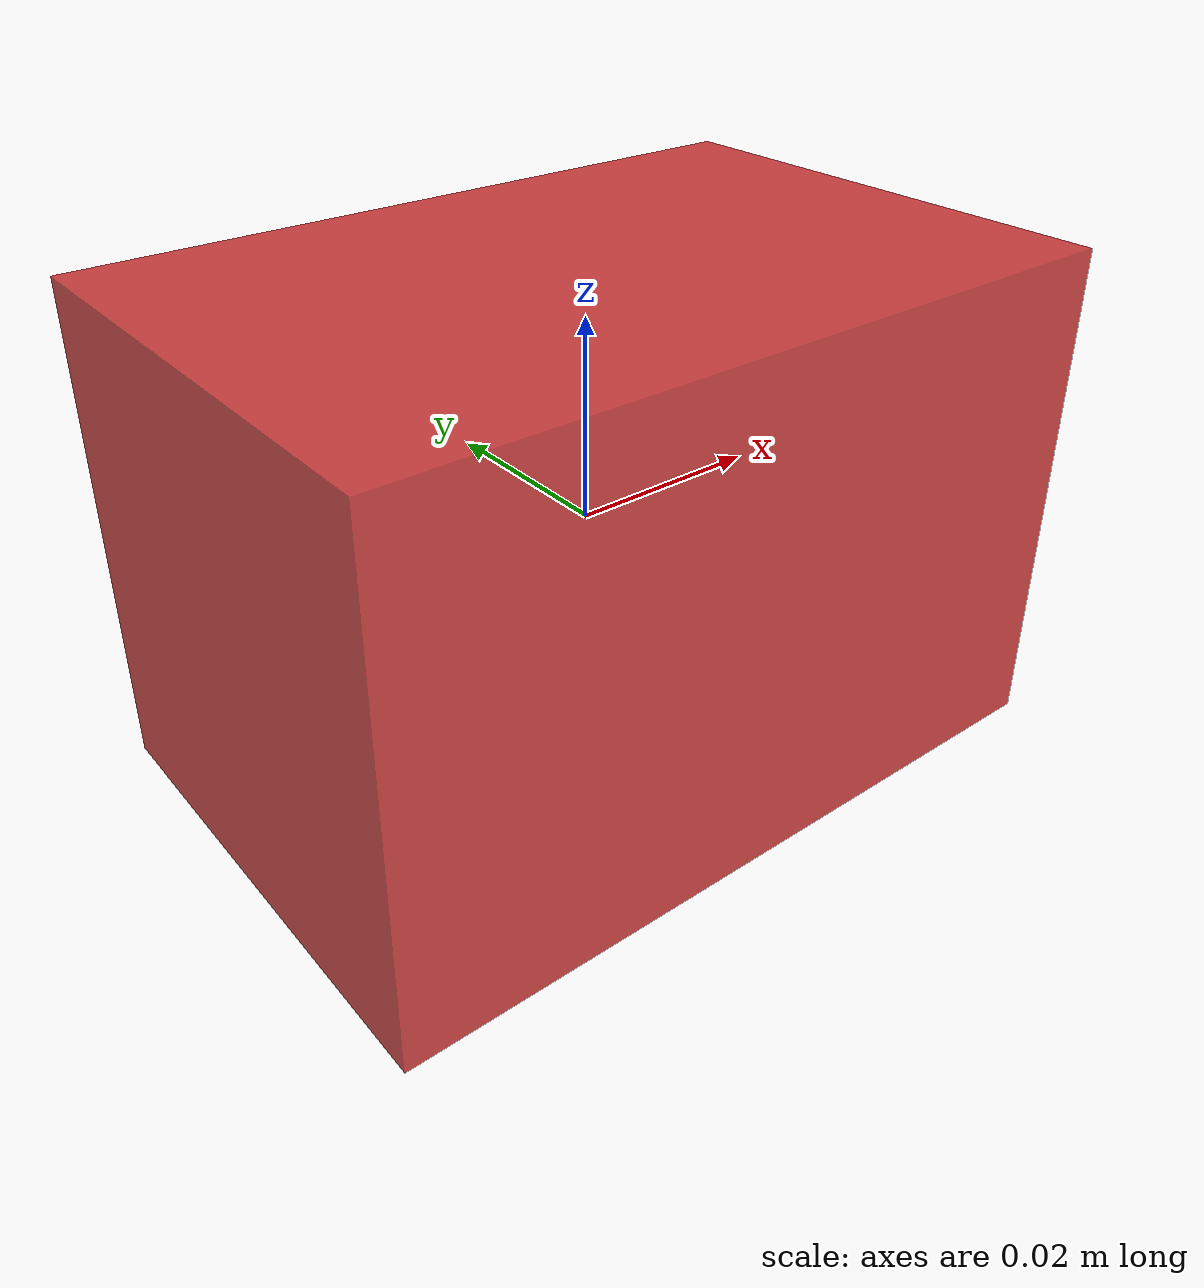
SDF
<?xml version="1.0"?>
<sdf version="1.7">
  <model name="optitrack_brick">
    <!--
    We use a 3 x3x0.1 m rectangular block to represent a rigid floor
    -->
    <link name="base_link">
      <pose>0 0 0 0 0 0</pose>
      <inertial>
        <pose>0 0 0 0 0 0</pose>
        <mass>0.15</mass>
      </inertial>
      <visual name="base_link">
        <pose>0 0 0 0 0 0</pose>
        <geometry>
          <box>
            <size>0.075 0.05 0.05</size>
          </box>
        </geometry>
        <material>
          <diffuse>0.8 0.1 0.1 0.8</diffuse>
        </material>
      </visual>
      <collision name="collision">
        <pose>0 0 0 0 0 0</pose>
        <geometry>
          <box>
            <size>0.075 0.05 0.05</size>
          </box>
        </geometry>
        <drake:proximity_properties>
          <drake:rigid_hydroelastic/>
          <drake:mu_dynamic> 1 </drake:mu_dynamic>
          <drake:mu_static> 1 </drake:mu_static>
          <drake:hunt_crossley_dissipation>3.0</drake:hunt_crossley_dissipation>
          <drake:relaxation_time>0.1</drake:relaxation_time>
        </drake:proximity_properties>
      </collision>
    </link>
  </model>
</sdf>
